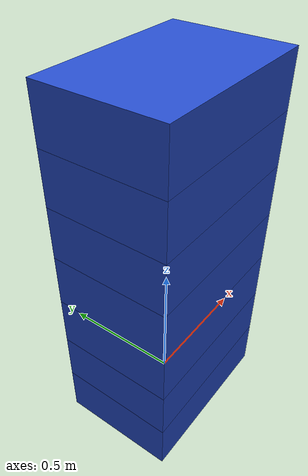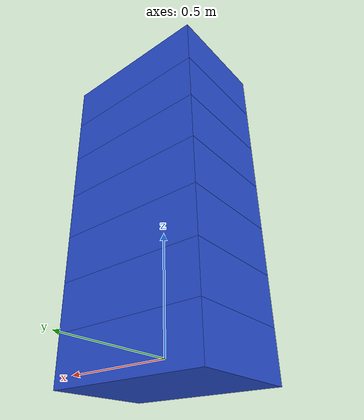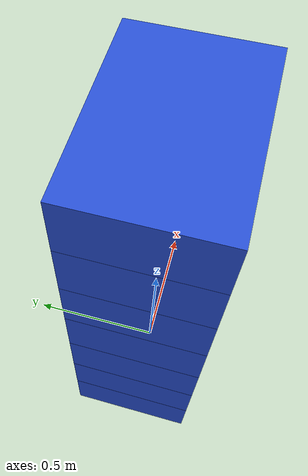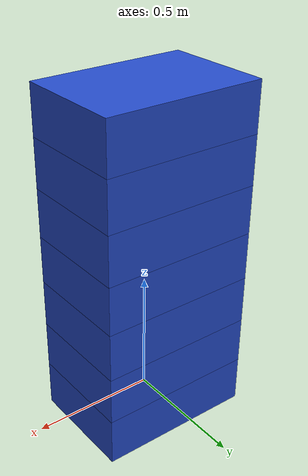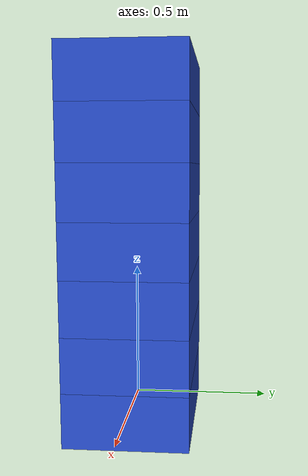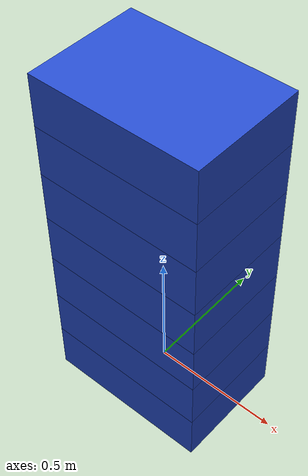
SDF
<?xml version="1.0" encoding="UTF-8"?>
<sdf version='1.4'>
   <model name="baggage_B_x7">
      <model name="baggage_B_0">
         <static>true</static>
         <link name="link">
               <collision name="collision">
                  <geometry>
                     <box>
                        <size>0.65 0.45 0.2</size>
                     </box>
                  </geometry>
               </collision>
               <visual name="visual">
                  <geometry>
                     <box>
                        <size>0.65 0.45 0.2</size>
                     </box>
                  </geometry>
                  <material>
                     <script>
                        <uri>file://media/materials/scripts/gazebo.material</uri>
                        <name>Gazebo/Blue</name>
                     </script>
                  </material>
               </visual>
            </link>
            <pose frame=''>0 0 0 0 0 0</pose>
      </model>
      <model name="baggage_B_1">
         <static>true</static>
         <link name="link">
               <collision name="collision">
                  <geometry>
                     <box>
                        <size>0.65 0.45 0.2</size>
                     </box>
                  </geometry>
               </collision>
               <visual name="visual">
                  <geometry>
                     <box>
                        <size>0.65 0.45 0.2</size>
                     </box>
                  </geometry>
                  <material>
                     <script>
                        <uri>file://media/materials/scripts/gazebo.material</uri>
                        <name>Gazebo/Blue</name>
                     </script>
                  </material>
               </visual>
            </link>
            <pose frame=''>0 0 0.2 0 0 0</pose>
      </model>
      <model name="baggage_B_2">
         <static>true</static>
         <link name="link">
               <collision name="collision">
                  <geometry>
                     <box>
                        <size>0.65 0.45 0.2</size>
                     </box>
                  </geometry>
               </collision>
               <visual name="visual">
                  <geometry>
                     <box>
                        <size>0.65 0.45 0.2</size>
                     </box>
                  </geometry>
                  <material>
                     <script>
                        <uri>file://media/materials/scripts/gazebo.material</uri>
                        <name>Gazebo/Blue</name>
                     </script>
                  </material>
               </visual>
            </link>
            <pose frame=''>0 0 0.4 0 0 0</pose>
      </model>
      <model name="baggage_B_3">
         <static>true</static>
         <link name="link">
               <collision name="collision">
                  <geometry>
                     <box>
                        <size>0.65 0.45 0.2</size>
                     </box>
                  </geometry>
               </collision>
               <visual name="visual">
                  <geometry>
                     <box>
                        <size>0.65 0.45 0.2</size>
                     </box>
                  </geometry>
                  <material>
                     <script>
                        <uri>file://media/materials/scripts/gazebo.material</uri>
                        <name>Gazebo/Blue</name>
                     </script>
                  </material>
               </visual>
            </link>
            <pose frame=''>0 0 0.6 0 0 0</pose>
      </model>
      <model name="baggage_B_4">
         <static>true</static>
         <link name="link">
               <collision name="collision">
                  <geometry>
                     <box>
                        <size>0.65 0.45 0.2</size>
                     </box>
                  </geometry>
               </collision>
               <visual name="visual">
                  <geometry>
                     <box>
                        <size>0.65 0.45 0.2</size>
                     </box>
                  </geometry>
                  <material>
                     <script>
                        <uri>file://media/materials/scripts/gazebo.material</uri>
                        <name>Gazebo/Blue</name>
                     </script>
                  </material>
               </visual>
            </link>
            <pose frame=''>0 0 0.8 0 0 0</pose>
      </model>
      <model name="baggage_B_5">
         <static>true</static>
         <link name="link">
               <collision name="collision">
                  <geometry>
                     <box>
                        <size>0.65 0.45 0.2</size>
                     </box>
                  </geometry>
               </collision>
               <visual name="visual">
                  <geometry>
                     <box>
                        <size>0.65 0.45 0.2</size>
                     </box>
                  </geometry>
                  <material>
                     <script>
                        <uri>file://media/materials/scripts/gazebo.material</uri>
                        <name>Gazebo/Blue</name>
                     </script>
                  </material>
               </visual>
            </link>
            <pose frame=''>0 0 1.0 0 0 0</pose>
      </model>
      <model name="baggage_B_6">
         <static>true</static>
         <link name="link">
               <collision name="collision">
                  <geometry>
                     <box>
                        <size>0.65 0.45 0.2</size>
                     </box>
                  </geometry>
               </collision>
               <visual name="visual">
                  <geometry>
                     <box>
                        <size>0.65 0.45 0.2</size>
                     </box>
                  </geometry>
                  <material>
                     <script>
                        <uri>file://media/materials/scripts/gazebo.material</uri>
                        <name>Gazebo/Blue</name>
                     </script>
                  </material>
               </visual>
            </link>
            <pose frame=''>0 0 1.2 0 0 0</pose>
      </model>
   </model>
</sdf>
